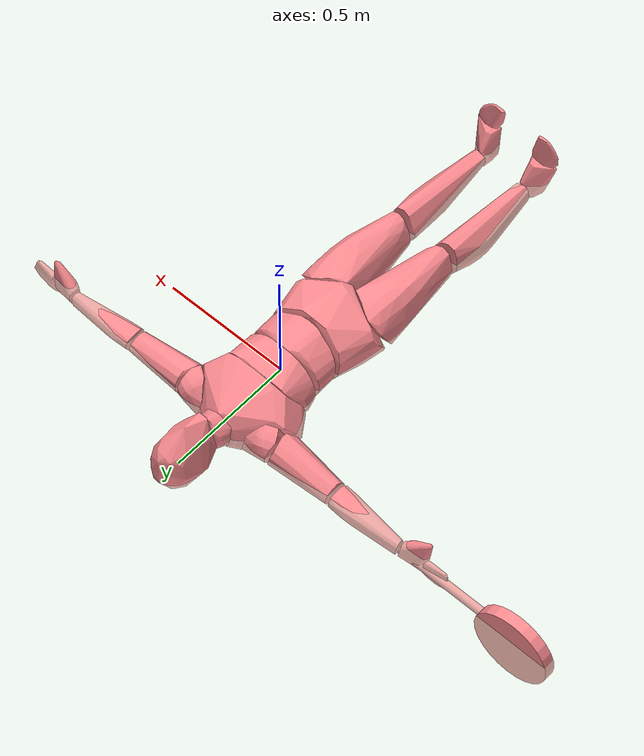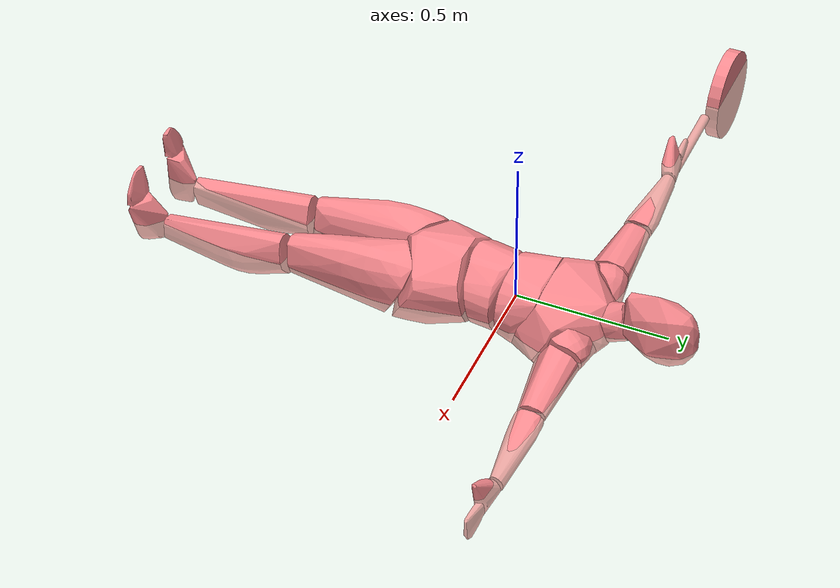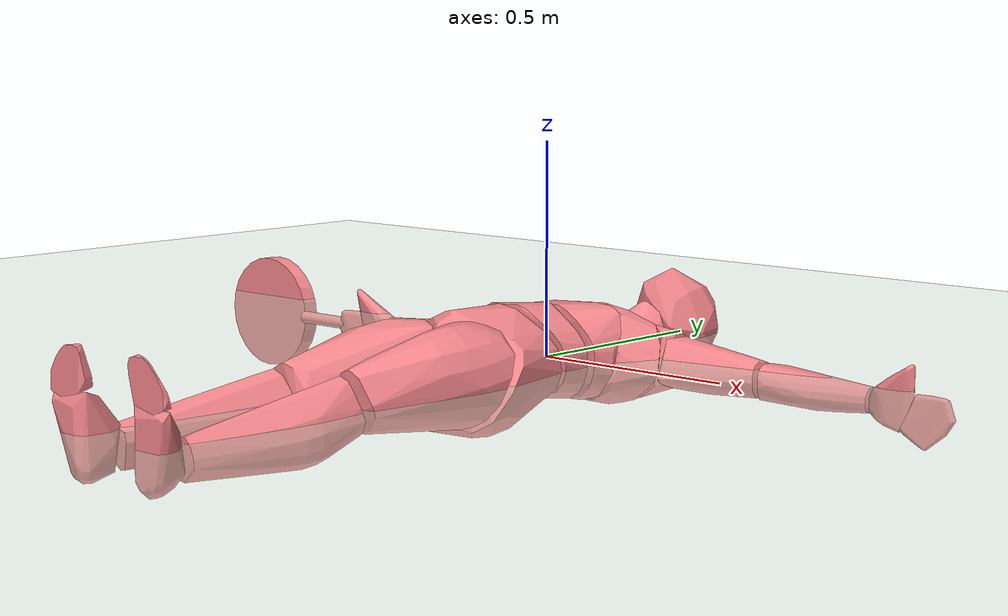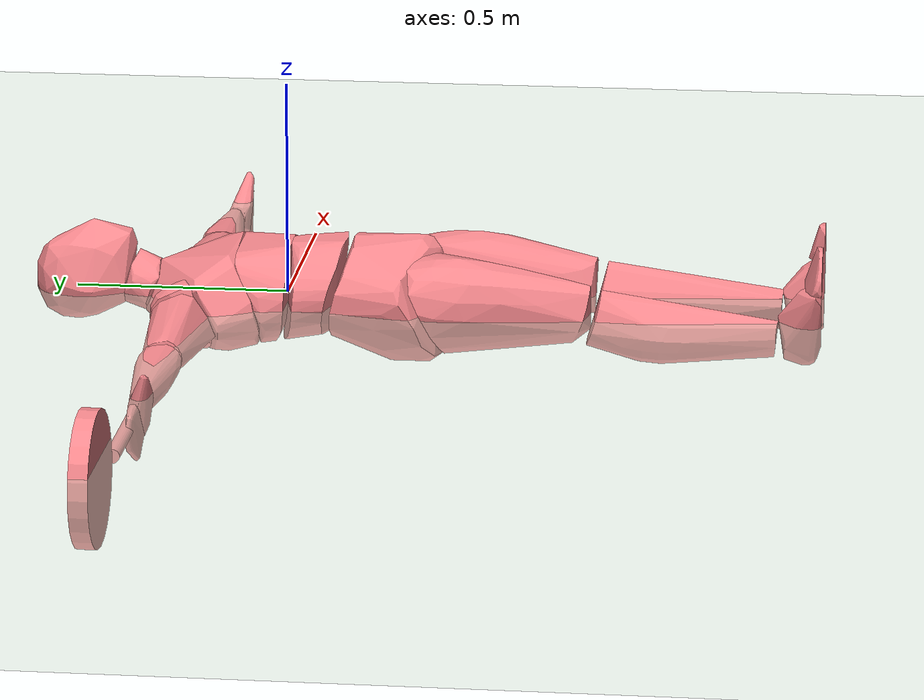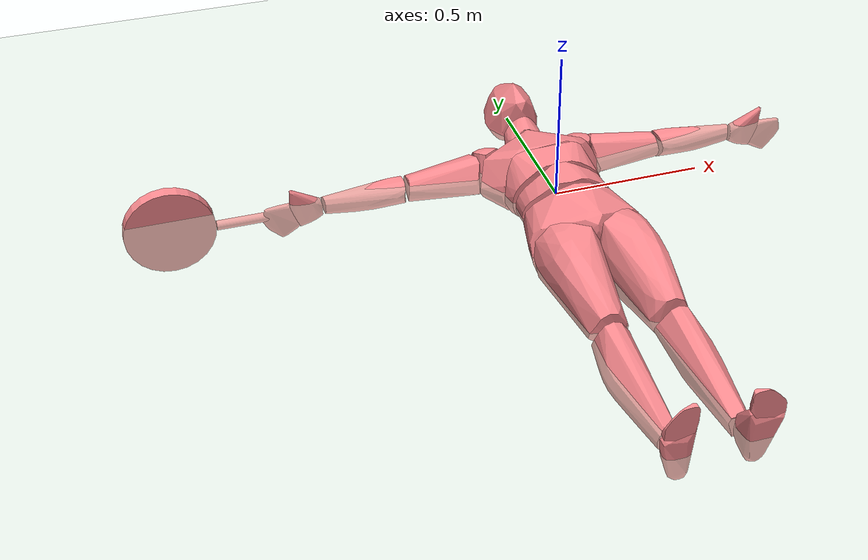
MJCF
<!-- Real Federer with gender=male (1.85m) eastern grip larger range on wrist twist-->
<mujoco model="humanoid">
  <compiler angle="degree" inertiafromgeom="true" coordinate="local"/>
  <visual>
    <headlight ambient=".4 .4 .4" diffuse=".8 .8 .8" specular="0.3 0.3 0.3"/>
    <map znear=".01"/>
    <quality shadowsize="2048"/>
  </visual>
  <default>
    <joint damping="0.0" armature="0.01" stiffness="0.0" limited="true"/>
    <geom conaffinity="7" condim="1" contype="7" margin="0.001" rgba=".98 .54 .56 1."/>
    <default class="actor1">
      <geom rgba="0.8 0.6 0.4 0.5"/>
    </default>
    <default class="actor2">
      <geom rgba="0.2 0.706 0.0 0.5"/>
    </default>
  </default>
  <statistic extent="3" center="0 0 1"/>
  <option timestep="0.00222222222"/>
  <asset>
    <texture type="skybox" builtin="gradient" rgb1=".4 .5 .6" rgb2="0 0 0" width="100" height="100"/>
    <texture builtin="flat" height="1278" mark="cross" markrgb="1 1 1" name="texgeom" random="0.01" rgb1="0.8 0.6 0.4" rgb2="0.8 0.6 0.4" type="cube" width="127"/>
    <texture name="grid_new" type="2d" builtin="checker" rgb1=".1 .3 .2" rgb2=".2 .4 .3" width="1000" height="1000" mark="none" markrgb=".8 .6 .4"/>
    <material name="grid_new" texture="grid_new" texrepeat="0.2 0.2" texuniform="true" reflectance=".2"/>
    <mesh file="mesh/b268e8df-2e68-4409-a253-d535f4267427/geom/Pelvis.stl" name="Pelvis_mesh"/>
    <mesh file="mesh/b268e8df-2e68-4409-a253-d535f4267427/geom/L_Hip.stl" name="L_Hip_mesh"/>
    <mesh file="mesh/b268e8df-2e68-4409-a253-d535f4267427/geom/R_Hip.stl" name="R_Hip_mesh"/>
    <mesh file="mesh/b268e8df-2e68-4409-a253-d535f4267427/geom/Torso.stl" name="Torso_mesh"/>
    <mesh file="mesh/b268e8df-2e68-4409-a253-d535f4267427/geom/L_Knee.stl" name="L_Knee_mesh"/>
    <mesh file="mesh/b268e8df-2e68-4409-a253-d535f4267427/geom/R_Knee.stl" name="R_Knee_mesh"/>
    <mesh file="mesh/b268e8df-2e68-4409-a253-d535f4267427/geom/Spine.stl" name="Spine_mesh"/>
    <mesh file="mesh/b268e8df-2e68-4409-a253-d535f4267427/geom/L_Ankle.stl" name="L_Ankle_mesh"/>
    <mesh file="mesh/b268e8df-2e68-4409-a253-d535f4267427/geom/R_Ankle.stl" name="R_Ankle_mesh"/>
    <mesh file="mesh/b268e8df-2e68-4409-a253-d535f4267427/geom/Chest.stl" name="Chest_mesh"/>
    <mesh file="mesh/b268e8df-2e68-4409-a253-d535f4267427/geom/L_Toe.stl" name="L_Toe_mesh"/>
    <mesh file="mesh/b268e8df-2e68-4409-a253-d535f4267427/geom/R_Toe.stl" name="R_Toe_mesh"/>
    <mesh file="mesh/b268e8df-2e68-4409-a253-d535f4267427/geom/Neck.stl" name="Neck_mesh"/>
    <mesh file="mesh/b268e8df-2e68-4409-a253-d535f4267427/geom/L_Thorax.stl" name="L_Thorax_mesh"/>
    <mesh file="mesh/b268e8df-2e68-4409-a253-d535f4267427/geom/R_Thorax.stl" name="R_Thorax_mesh"/>
    <mesh file="mesh/b268e8df-2e68-4409-a253-d535f4267427/geom/Head.stl" name="Head_mesh"/>
    <mesh file="mesh/b268e8df-2e68-4409-a253-d535f4267427/geom/L_Shoulder.stl" name="L_Shoulder_mesh"/>
    <mesh file="mesh/b268e8df-2e68-4409-a253-d535f4267427/geom/R_Shoulder.stl" name="R_Shoulder_mesh"/>
    <mesh file="mesh/b268e8df-2e68-4409-a253-d535f4267427/geom/L_Elbow.stl" name="L_Elbow_mesh"/>
    <mesh file="mesh/b268e8df-2e68-4409-a253-d535f4267427/geom/R_Elbow.stl" name="R_Elbow_mesh"/>
    <mesh file="mesh/b268e8df-2e68-4409-a253-d535f4267427/geom/L_Wrist.stl" name="L_Wrist_mesh"/>
    <mesh file="mesh/b268e8df-2e68-4409-a253-d535f4267427/geom/R_Wrist.stl" name="R_Wrist_mesh"/>
    <mesh file="mesh/b268e8df-2e68-4409-a253-d535f4267427/geom/L_Hand.stl" name="L_Hand_mesh"/>
    <mesh file="mesh/b268e8df-2e68-4409-a253-d535f4267427/geom/R_Hand.stl" name="R_Hand_mesh"/>
  </asset>
  <worldbody>
    <light cutoff="100" diffuse="1 1 1" dir="-0 0 -1.3" directional="true" exponent="1" pos="0 0 1.3" specular=".1 .1 .1"/>
    <geom conaffinity="1" condim="3" name="floor" pos="0 0 0" rgba="0.8 0.9 0.8 1" size="100 100 .2" type="plane" material="grid_new"/>
    <body name="Pelvis" pos="-0.002 -0.2349 0.0243" quat="1.0000 0.0000 0.0000 0.0000">
      <freejoint name="Pelvis"/>
      <geom type="mesh" mesh="Pelvis_mesh" density="900" contype="1" conaffinity="1"/>
      <body name="L_Hip" pos="0.0603 -0.0823 -0.0229" quat="1.0000 0.0000 0.0000 0.0000">
        <joint name="L_Hip_x" type="hinge" pos="0 0 0" axis="1 0 0" stiffness="500" damping="50" armature="0.02" range="-180.0000 180.0000"/>
        <joint name="L_Hip_y" type="hinge" pos="0 0 0" axis="0 1 0" stiffness="500" damping="50" armature="0.02" range="-180.0000 180.0000"/>
        <joint name="L_Hip_z" type="hinge" pos="0 0 0" axis="0 0 1" stiffness="500" damping="50" armature="0.02" range="-180.0000 180.0000"/>
        <geom type="mesh" mesh="L_Hip_mesh" density="900" contype="1" conaffinity="1"/>
        <body name="L_Knee" pos="0.0496 -0.4097 0.0079" quat="1.0000 0.0000 0.0000 0.0000">
          <joint name="L_Knee_x" type="hinge" pos="0 0 0" axis="1 0 0" stiffness="500" damping="50" armature="0.02" range="-180.0000 180.0000"/>
          <joint name="L_Knee_y" type="hinge" pos="0 0 0" axis="0 1 0" stiffness="500" damping="50" armature="0.02" range="-180.0000 180.0000"/>
          <joint name="L_Knee_z" type="hinge" pos="0 0 0" axis="0 0 1" stiffness="500" damping="50" armature="0.02" range="-180.0000 180.0000"/>
          <geom type="mesh" mesh="L_Knee_mesh" density="900" contype="1" conaffinity="1"/>
          <body name="L_Ankle" pos="-0.0143 -0.449 -0.0369" quat="1.0000 0.0000 0.0000 0.0000">
            <joint name="L_Ankle_x" type="hinge" pos="0 0 0" axis="1 0 0" stiffness="400" damping="40" armature="0.02" range="-180.0000 180.0000"/>
            <joint name="L_Ankle_y" type="hinge" pos="0 0 0" axis="0 1 0" stiffness="400" damping="40" armature="0.02" range="-180.0000 180.0000"/>
            <joint name="L_Ankle_z" type="hinge" pos="0 0 0" axis="0 0 1" stiffness="400" damping="40" armature="0.02" range="-180.0000 180.0000"/>
            <geom type="mesh" mesh="L_Ankle_mesh" density="900" contype="1" conaffinity="1"/>
            <body name="L_Toe" pos="0.0479 -0.0639 0.1251" quat="1.0000 0.0000 0.0000 0.0000">
              <joint name="L_Toe_x" type="hinge" pos="0 0 0" axis="1 0 0" stiffness="200" damping="20" armature="0.02" range="-180.0000 180.0000"/>
              <joint name="L_Toe_y" type="hinge" pos="0 0 0" axis="0 1 0" stiffness="200" damping="20" armature="0.02" range="-180.0000 180.0000"/>
              <joint name="L_Toe_z" type="hinge" pos="0 0 0" axis="0 0 1" stiffness="200" damping="20" armature="0.02" range="-180.0000 180.0000"/>
              <geom type="mesh" mesh="L_Toe_mesh" density="900" contype="1" conaffinity="1"/>
            </body>
          </body>
        </body>
      </body>
      <body name="R_Hip" pos="-0.0617 -0.0894 -0.0202" quat="1.0000 0.0000 0.0000 0.0000">
        <joint name="R_Hip_x" type="hinge" pos="0 0 0" axis="1 0 0" stiffness="500" damping="50" armature="0.02" range="-180.0000 180.0000"/>
        <joint name="R_Hip_y" type="hinge" pos="0 0 0" axis="0 1 0" stiffness="500" damping="50" armature="0.02" range="-180.0000 180.0000"/>
        <joint name="R_Hip_z" type="hinge" pos="0 0 0" axis="0 0 1" stiffness="500" damping="50" armature="0.02" range="-180.0000 180.0000"/>
        <geom type="mesh" mesh="R_Hip_mesh" density="900" contype="1" conaffinity="1"/>
        <body name="R_Knee" pos="-0.0482 -0.4046 -0.0063" quat="1.0000 0.0000 0.0000 0.0000">
          <joint name="R_Knee_x" type="hinge" pos="0 0 0" axis="1 0 0" stiffness="500" damping="50" armature="0.02" range="-180.0000 180.0000"/>
          <joint name="R_Knee_y" type="hinge" pos="0 0 0" axis="0 1 0" stiffness="500" damping="50" armature="0.02" range="-180.0000 180.0000"/>
          <joint name="R_Knee_z" type="hinge" pos="0 0 0" axis="0 0 1" stiffness="500" damping="50" armature="0.02" range="-180.0000 180.0000"/>
          <geom type="mesh" mesh="R_Knee_mesh" density="900" contype="1" conaffinity="1"/>
          <body name="R_Ankle" pos="0.019 -0.4414 -0.0347" quat="1.0000 0.0000 0.0000 0.0000">
            <joint name="R_Ankle_x" type="hinge" pos="0 0 0" axis="1 0 0" stiffness="400" damping="40" armature="0.02" range="-180.0000 180.0000"/>
            <joint name="R_Ankle_y" type="hinge" pos="0 0 0" axis="0 1 0" stiffness="400" damping="40" armature="0.02" range="-180.0000 180.0000"/>
            <joint name="R_Ankle_z" type="hinge" pos="0 0 0" axis="0 0 1" stiffness="400" damping="40" armature="0.02" range="-180.0000 180.0000"/>
            <geom type="mesh" mesh="R_Ankle_mesh" density="900" contype="1" conaffinity="1"/>
            <body name="R_Toe" pos="-0.0384 -0.0652 0.1345" quat="1.0000 0.0000 0.0000 0.0000">
              <joint name="R_Toe_x" type="hinge" pos="0 0 0" axis="1 0 0" stiffness="200" damping="20" armature="0.02" range="-180.0000 180.0000"/>
              <joint name="R_Toe_y" type="hinge" pos="0 0 0" axis="0 1 0" stiffness="200" damping="20" armature="0.02" range="-180.0000 180.0000"/>
              <joint name="R_Toe_z" type="hinge" pos="0 0 0" axis="0 0 1" stiffness="200" damping="20" armature="0.02" range="-180.0000 180.0000"/>
              <geom type="mesh" mesh="R_Toe_mesh" density="900" contype="1" conaffinity="1"/>
            </body>
          </body>
        </body>
      </body>
      <body name="Torso" pos="0.0045 0.1201 -0.0365" quat="1.0000 0.0000 0.0000 0.0000">
        <joint name="Torso_x" type="hinge" pos="0 0 0" axis="1 0 0" stiffness="1000" damping="100" armature="0.02" range="-180.0000 180.0000"/>
        <joint name="Torso_y" type="hinge" pos="0 0 0" axis="0 1 0" stiffness="1000" damping="100" armature="0.02" range="-180.0000 180.0000"/>
        <joint name="Torso_z" type="hinge" pos="0 0 0" axis="0 0 1" stiffness="1000" damping="100" armature="0.02" range="-180.0000 180.0000"/>
        <geom type="mesh" mesh="Torso_mesh" density="900" contype="1" conaffinity="1"/>
        <body name="Spine" pos="0.0036 0.1373 0.0271" quat="1.0000 0.0000 0.0000 0.0000">
          <joint name="Spine_x" type="hinge" pos="0 0 0" axis="1 0 0" stiffness="1000" damping="100" armature="0.02" range="-180.0000 180.0000"/>
          <joint name="Spine_y" type="hinge" pos="0 0 0" axis="0 1 0" stiffness="1000" damping="100" armature="0.02" range="-180.0000 180.0000"/>
          <joint name="Spine_z" type="hinge" pos="0 0 0" axis="0 0 1" stiffness="1000" damping="100" armature="0.02" range="-180.0000 180.0000"/>
          <geom type="mesh" mesh="Spine_mesh" density="900" contype="1" conaffinity="1"/>
          <body name="Chest" pos="-0.0022 0.0563 0.0016" quat="1.0000 0.0000 0.0000 0.0000">
            <joint name="Chest_x" type="hinge" pos="0 0 0" axis="1 0 0" stiffness="1000" damping="100" armature="0.02" range="-180.0000 180.0000"/>
            <joint name="Chest_y" type="hinge" pos="0 0 0" axis="0 1 0" stiffness="1000" damping="100" armature="0.02" range="-180.0000 180.0000"/>
            <joint name="Chest_z" type="hinge" pos="0 0 0" axis="0 0 1" stiffness="1000" damping="100" armature="0.02" range="-180.0000 180.0000"/>
            <geom type="mesh" mesh="Chest_mesh" density="900" contype="1" conaffinity="1"/>
            <body name="Neck" pos="-0.0132 0.2171 -0.0235" quat="1.0000 0.0000 0.0000 0.0000">
              <joint name="Neck_x" type="hinge" pos="0 0 0" axis="1 0 0" stiffness="100" damping="10" armature="0.02" range="-180.0000 180.0000"/>
              <joint name="Neck_y" type="hinge" pos="0 0 0" axis="0 1 0" stiffness="100" damping="10" armature="0.02" range="-180.0000 180.0000"/>
              <joint name="Neck_z" type="hinge" pos="0 0 0" axis="0 0 1" stiffness="100" damping="10" armature="0.02" range="-180.0000 180.0000"/>
              <geom type="mesh" mesh="Neck_mesh" density="900" contype="1" conaffinity="1"/>
              <body name="Head" pos="0.0112 0.0995 0.055" quat="1.0000 0.0000 0.0000 0.0000">
                <joint name="Head_x" type="hinge" pos="0 0 0" axis="1 0 0" stiffness="100" damping="10" armature="0.02" range="-180.0000 180.0000"/>
                <joint name="Head_y" type="hinge" pos="0 0 0" axis="0 1 0" stiffness="100" damping="10" armature="0.02" range="-180.0000 180.0000"/>
                <joint name="Head_z" type="hinge" pos="0 0 0" axis="0 0 1" stiffness="100" damping="10" armature="0.02" range="-180.0000 180.0000"/>
                <geom type="mesh" mesh="Head_mesh" density="900" contype="1" conaffinity="1"/>
              </body>
            </body>
            <body name="L_Thorax" pos="0.071 0.1152 -0.0148" quat="1.0000 0.0000 0.0000 0.0000">
              <joint name="L_Thorax_x" type="hinge" pos="0 0 0" axis="1 0 0" stiffness="400" damping="40" armature="0.02" range="-180.0000 180.0000"/>
              <joint name="L_Thorax_y" type="hinge" pos="0 0 0" axis="0 1 0" stiffness="400" damping="40" armature="0.02" range="-180.0000 180.0000"/>
              <joint name="L_Thorax_z" type="hinge" pos="0 0 0" axis="0 0 1" stiffness="400" damping="40" armature="0.02" range="-180.0000 180.0000"/>
              <geom type="mesh" mesh="L_Thorax_mesh" density="900" contype="1" conaffinity="1"/>
              <body name="L_Shoulder" pos="0.1215 0.0488 -0.0166" quat="1.0000 0.0000 0.0000 0.0000">
                <joint name="L_Shoulder_x" type="hinge" pos="0 0 0" axis="1 0 0" stiffness="400" damping="40" armature="0.02" range="-180.0000 180.0000"/>
                <joint name="L_Shoulder_y" type="hinge" pos="0 0 0" axis="0 1 0" stiffness="400" damping="40" armature="0.02" range="-180.0000 180.0000"/>
                <joint name="L_Shoulder_z" type="hinge" pos="0 0 0" axis="0 0 1" stiffness="400" damping="40" armature="0.02" range="-180.0000 180.0000"/>
                <geom type="mesh" mesh="L_Shoulder_mesh" density="900" contype="1" conaffinity="1"/>
                <body name="L_Elbow" pos="0.2662 -0.0202 -0.0234" quat="1.0000 0.0000 0.0000 0.0000">
                  <joint name="L_Elbow_x" type="hinge" pos="0 0 0" axis="1 0 0" stiffness="300" damping="30" armature="0.02" range="-720.0000 720.0000"/>
                  <joint name="L_Elbow_y" type="hinge" pos="0 0 0" axis="0 1 0" stiffness="300" damping="30" armature="0.02" range="-720.0000 720.0000"/>
                  <joint name="L_Elbow_z" type="hinge" pos="0 0 0" axis="0 0 1" stiffness="300" damping="30" armature="0.02" range="-720.0000 720.0000"/>
                  <geom type="mesh" mesh="L_Elbow_mesh" density="900" contype="1" conaffinity="1"/>
                  <body name="L_Wrist" pos="0.2764 0.0145 -0.0064" quat="1.0000 0.0000 0.0000 0.0000">
                    <joint name="L_Wrist_x" type="hinge" pos="0 0 0" axis="1 0 0" stiffness="100" damping="10" armature="0.02" range="-180.0000 180.0000"/>
                    <joint name="L_Wrist_y" type="hinge" pos="0 0 0" axis="0 1 0" stiffness="100" damping="10" armature="0.02" range="-180.0000 180.0000"/>
                    <joint name="L_Wrist_z" type="hinge" pos="0 0 0" axis="0 0 1" stiffness="100" damping="10" armature="0.02" range="-180.0000 180.0000"/>
                    <geom type="mesh" mesh="L_Wrist_mesh" density="900" contype="1" conaffinity="1"/>
                    <body name="L_Hand" pos="0.09 -0.0113 -0.0164" quat="1.0000 0.0000 0.0000 0.0000">
                      <joint name="L_Hand_x" type="hinge" pos="0 0 0" axis="1 0 0" stiffness="100" damping="10" armature="0.02" range="-180.0000 180.0000"/>
                      <joint name="L_Hand_y" type="hinge" pos="0 0 0" axis="0 1 0" stiffness="100" damping="10" armature="0.02" range="-180.0000 180.0000"/>
                      <joint name="L_Hand_z" type="hinge" pos="0 0 0" axis="0 0 1" stiffness="100" damping="10" armature="0.02" range="-180.0000 180.0000"/>
                      <geom type="mesh" mesh="L_Hand_mesh" density="900" contype="1" conaffinity="1"/>
                    </body>
                  </body>
                </body>
              </body>
            </body>
            <body name="R_Thorax" pos="-0.0819 0.1133 -0.0212" quat="1.0000 0.0000 0.0000 0.0000">
              <joint name="R_Thorax_x" type="hinge" pos="0 0 0" axis="1 0 0" stiffness="400" damping="40" armature="0.02" range="-180.0000 180.0000"/>
              <joint name="R_Thorax_y" type="hinge" pos="0 0 0" axis="0 1 0" stiffness="400" damping="40" armature="0.02" range="-180.0000 180.0000"/>
              <joint name="R_Thorax_z" type="hinge" pos="0 0 0" axis="0 0 1" stiffness="400" damping="40" armature="0.02" range="-180.0000 180.0000"/>
              <geom type="mesh" mesh="R_Thorax_mesh" density="900" contype="1" conaffinity="1"/>
              <body name="R_Shoulder" pos="-0.1129 0.0512 -0.0065" quat="1.0000 0.0000 0.0000 0.0000">
                <joint name="R_Shoulder_x" type="hinge" pos="0 0 0" axis="1 0 0" stiffness="400" damping="40" armature="0.02" range="-180.0000 180.0000"/>
                <joint name="R_Shoulder_y" type="hinge" pos="0 0 0" axis="0 1 0" stiffness="400" damping="40" armature="0.02" range="-180.0000 180.0000"/>
                <joint name="R_Shoulder_z" type="hinge" pos="0 0 0" axis="0 0 1" stiffness="400" damping="40" armature="0.02" range="-180.0000 180.0000"/>
                <geom type="mesh" mesh="R_Shoulder_mesh" density="900" contype="1" conaffinity="1"/>
                <body name="R_Elbow" pos="-0.271 -0.0218 -0.0328" quat="1.0000 0.0000 0.0000 0.0000">
                  <joint name="R_Elbow_x" type="hinge" pos="0 0 0" axis="1 0 0" stiffness="300" damping="30" armature="0.02" range="-180.0000 90.0000"/>
                  <joint name="R_Elbow_y" type="hinge" pos="0 0 0" axis="0 1 0" stiffness="300" damping="30" armature="0.02" range="-720.0000 720.0000"/>
                  <joint name="R_Elbow_z" type="hinge" pos="0 0 0" axis="0 0 1" stiffness="300" damping="30" armature="0.02" range="-720.0000 720.0000"/>
                  <geom type="mesh" mesh="R_Elbow_mesh" density="900" contype="1" conaffinity="1"/>
                  <body name="R_Wrist" pos="-0.281 0.0077 -0.0051" quat="1.0000 0.0000 0.0000 0.0000">
                    <joint name="R_Wrist_x" type="hinge" pos="0 0 0" axis="1 0 0" stiffness="100" damping="10" armature="0.02" range="-90.0000 10.0000"/>
                    <joint name="R_Wrist_y" type="hinge" pos="0 0 0" axis="0 1 0" stiffness="100" damping="10" armature="0.02" range="-45.0000 45.0000"/>
                    <joint name="R_Wrist_z" type="hinge" pos="0 0 0" axis="0 0 1" stiffness="100" damping="10" armature="0.02" range="-90.0000 90.0000"/>
                    <geom type="mesh" mesh="R_Wrist_mesh" density="900" contype="1" conaffinity="1"/>
                    <body name="R_Hand" pos="-0.0915 -0.009 -0.0108" quat="1.0000 0.0000 0.0000 0.0000">
                      <joint name="R_Hand_x" type="hinge" pos="0 0 0" axis="1 0 0" stiffness="100" damping="10" armature="0.02" range="-180.0000 180.0000"/>
                      <joint name="R_Hand_y" type="hinge" pos="0 0 0" axis="0 1 0" stiffness="100" damping="10" armature="0.02" range="-180.0000 180.0000"/>
                      <joint name="R_Hand_z" type="hinge" pos="0 0 0" axis="0 0 1" stiffness="100" damping="10" armature="0.02" range="-180.0000 180.0000"/>
                      <geom type="mesh" mesh="R_Hand_mesh" density="900" contype="1" conaffinity="1"/>
                    </body>
                    <body name="Racket" pos="-0.5 0 0">
                      <geom type="cylinder" fromto="0.5 0 0 0.15 0 0" size="0.016" density="500"/>
                      <geom type="cylinder" fromto="0 0 0 0 0.0425 0" size="0.15" density="150"/>
                    </body>
                  </body>
                </body>
              </body>
            </body>
          </body>
        </body>
      </body>
    </body>
  </worldbody>
  <actuator>
    <motor name="L_Hip_x" joint="L_Hip_x" gear="1"/>
    <motor name="L_Hip_y" joint="L_Hip_y" gear="1"/>
    <motor name="L_Hip_z" joint="L_Hip_z" gear="1"/>
    <motor name="L_Knee_x" joint="L_Knee_x" gear="1"/>
    <motor name="L_Knee_y" joint="L_Knee_y" gear="1"/>
    <motor name="L_Knee_z" joint="L_Knee_z" gear="1"/>
    <motor name="L_Ankle_x" joint="L_Ankle_x" gear="1"/>
    <motor name="L_Ankle_y" joint="L_Ankle_y" gear="1"/>
    <motor name="L_Ankle_z" joint="L_Ankle_z" gear="1"/>
    <motor name="L_Toe_x" joint="L_Toe_x" gear="1"/>
    <motor name="L_Toe_y" joint="L_Toe_y" gear="1"/>
    <motor name="L_Toe_z" joint="L_Toe_z" gear="1"/>
    <motor name="R_Hip_x" joint="R_Hip_x" gear="1"/>
    <motor name="R_Hip_y" joint="R_Hip_y" gear="1"/>
    <motor name="R_Hip_z" joint="R_Hip_z" gear="1"/>
    <motor name="R_Knee_x" joint="R_Knee_x" gear="1"/>
    <motor name="R_Knee_y" joint="R_Knee_y" gear="1"/>
    <motor name="R_Knee_z" joint="R_Knee_z" gear="1"/>
    <motor name="R_Ankle_x" joint="R_Ankle_x" gear="1"/>
    <motor name="R_Ankle_y" joint="R_Ankle_y" gear="1"/>
    <motor name="R_Ankle_z" joint="R_Ankle_z" gear="1"/>
    <motor name="R_Toe_x" joint="R_Toe_x" gear="1"/>
    <motor name="R_Toe_y" joint="R_Toe_y" gear="1"/>
    <motor name="R_Toe_z" joint="R_Toe_z" gear="1"/>
    <motor name="Torso_x" joint="Torso_x" gear="1"/>
    <motor name="Torso_y" joint="Torso_y" gear="1"/>
    <motor name="Torso_z" joint="Torso_z" gear="1"/>
    <motor name="Spine_x" joint="Spine_x" gear="1"/>
    <motor name="Spine_y" joint="Spine_y" gear="1"/>
    <motor name="Spine_z" joint="Spine_z" gear="1"/>
    <motor name="Chest_x" joint="Chest_x" gear="1"/>
    <motor name="Chest_y" joint="Chest_y" gear="1"/>
    <motor name="Chest_z" joint="Chest_z" gear="1"/>
    <motor name="Neck_x" joint="Neck_x" gear="1"/>
    <motor name="Neck_y" joint="Neck_y" gear="1"/>
    <motor name="Neck_z" joint="Neck_z" gear="1"/>
    <motor name="Head_x" joint="Head_x" gear="1"/>
    <motor name="Head_y" joint="Head_y" gear="1"/>
    <motor name="Head_z" joint="Head_z" gear="1"/>
    <motor name="L_Thorax_x" joint="L_Thorax_x" gear="1"/>
    <motor name="L_Thorax_y" joint="L_Thorax_y" gear="1"/>
    <motor name="L_Thorax_z" joint="L_Thorax_z" gear="1"/>
    <motor name="L_Shoulder_x" joint="L_Shoulder_x" gear="1"/>
    <motor name="L_Shoulder_y" joint="L_Shoulder_y" gear="1"/>
    <motor name="L_Shoulder_z" joint="L_Shoulder_z" gear="1"/>
    <motor name="L_Elbow_x" joint="L_Elbow_x" gear="1"/>
    <motor name="L_Elbow_y" joint="L_Elbow_y" gear="1"/>
    <motor name="L_Elbow_z" joint="L_Elbow_z" gear="1"/>
    <motor name="L_Wrist_x" joint="L_Wrist_x" gear="1"/>
    <motor name="L_Wrist_y" joint="L_Wrist_y" gear="1"/>
    <motor name="L_Wrist_z" joint="L_Wrist_z" gear="1"/>
    <motor name="L_Hand_x" joint="L_Hand_x" gear="1"/>
    <motor name="L_Hand_y" joint="L_Hand_y" gear="1"/>
    <motor name="L_Hand_z" joint="L_Hand_z" gear="1"/>
    <motor name="R_Thorax_x" joint="R_Thorax_x" gear="1"/>
    <motor name="R_Thorax_y" joint="R_Thorax_y" gear="1"/>
    <motor name="R_Thorax_z" joint="R_Thorax_z" gear="1"/>
    <motor name="R_Shoulder_x" joint="R_Shoulder_x" gear="1"/>
    <motor name="R_Shoulder_y" joint="R_Shoulder_y" gear="1"/>
    <motor name="R_Shoulder_z" joint="R_Shoulder_z" gear="1"/>
    <motor name="R_Elbow_x" joint="R_Elbow_x" gear="1"/>
    <motor name="R_Elbow_y" joint="R_Elbow_y" gear="1"/>
    <motor name="R_Elbow_z" joint="R_Elbow_z" gear="1"/>
    <motor name="R_Wrist_x" joint="R_Wrist_x" gear="1"/>
    <motor name="R_Wrist_y" joint="R_Wrist_y" gear="1"/>
    <motor name="R_Wrist_z" joint="R_Wrist_z" gear="1"/>
    <motor name="R_Hand_x" joint="R_Hand_x" gear="1"/>
    <motor name="R_Hand_y" joint="R_Hand_y" gear="1"/>
    <motor name="R_Hand_z" joint="R_Hand_z" gear="1"/>
  </actuator>
  <contact>
    <exclude body1="Chest" body2="L_Shoulder"/>
    <exclude body1="Chest" body2="R_Shoulder"/>
    <exclude body1="Chest" body2="R_Thorax"/>
    <exclude body1="Chest" body2="L_Thorax"/>
    <exclude body1="L_Hip" body2="Pelvis"/>
    <exclude body1="R_Hip" body2="Pelvis"/>
    <exclude body1="Torso" body2="Pelvis"/>
    <exclude body1="L_Knee" body2="L_Hip"/>
    <exclude body1="R_Knee" body2="R_Hip"/>
    <exclude body1="Spine" body2="Torso"/>
    <exclude body1="L_Ankle" body2="L_Knee"/>
    <exclude body1="R_Ankle" body2="R_Knee"/>
    <exclude body1="Chest" body2="Spine"/>
    <exclude body1="L_Toe" body2="L_Ankle"/>
    <exclude body1="R_Toe" body2="R_Ankle"/>
    <exclude body1="Neck" body2="Chest"/>
    <exclude body1="L_Thorax" body2="Chest"/>
    <exclude body1="R_Thorax" body2="Chest"/>
    <exclude body1="Head" body2="Neck"/>
    <exclude body1="L_Shoulder" body2="L_Thorax"/>
    <exclude body1="R_Shoulder" body2="R_Thorax"/>
    <exclude body1="L_Elbow" body2="L_Shoulder"/>
    <exclude body1="R_Elbow" body2="R_Shoulder"/>
    <exclude body1="L_Wrist" body2="L_Elbow"/>
    <exclude body1="R_Wrist" body2="R_Elbow"/>
    <exclude body1="L_Hand" body2="L_Wrist"/>
    <exclude body1="R_Hand" body2="R_Wrist"/>
  </contact>
  <size njmax="2500" nconmax="500"/>
</mujoco>
